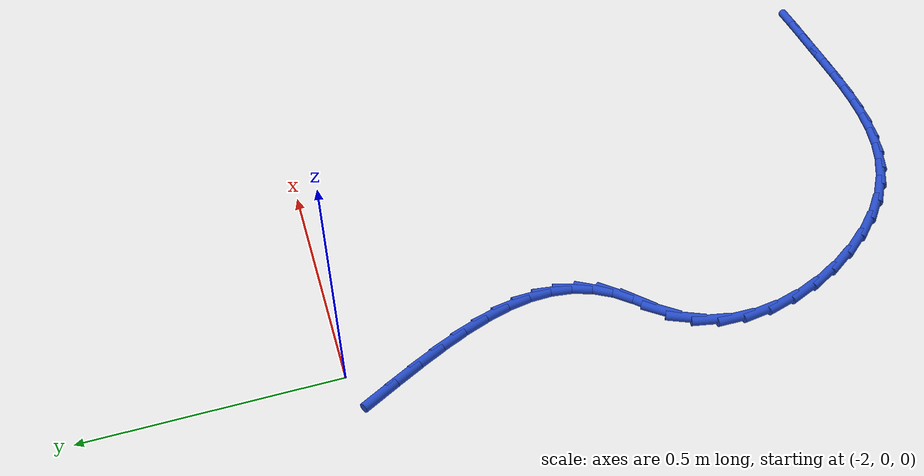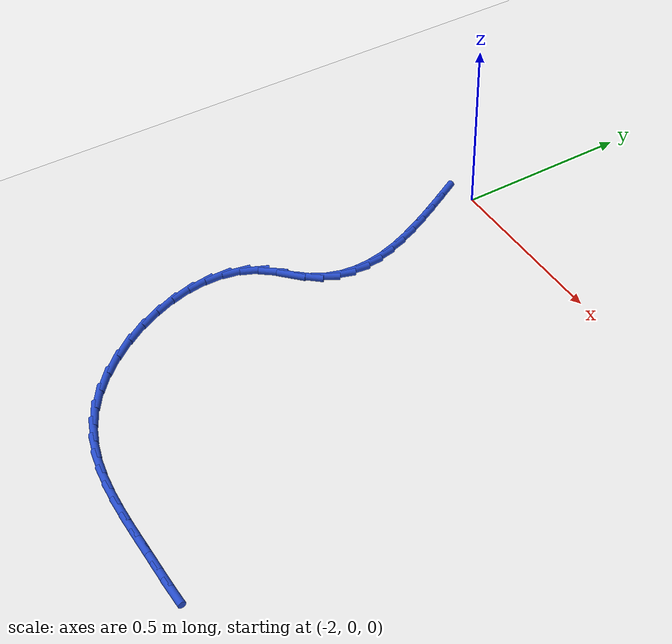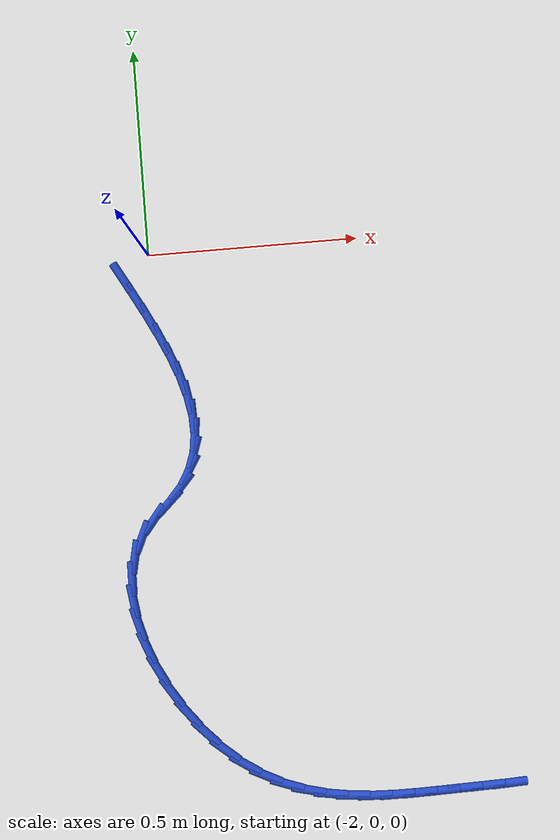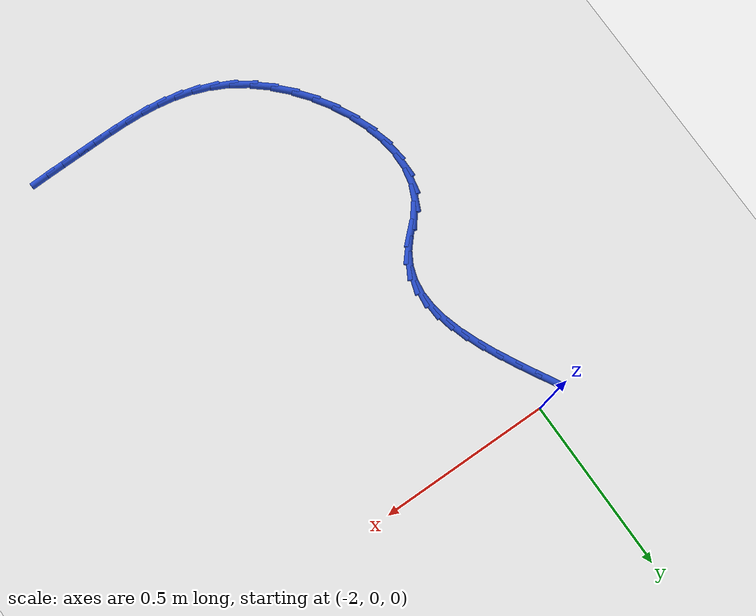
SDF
<sdf version="1.6">
 <world name="default">
  <model name="ground_plane">
   <static>1</static>
   <link name="link">
    <collision name="collision">
     <geometry><plane><normal>0 0 1</normal><size>100 100</size></plane></geometry>
     <surface><friction><ode><mu>100</mu><mu2>50</mu2></ode></friction></surface>
    </collision>
    <visual name="visual">
     <cast_shadows>0</cast_shadows>
     <geometry><plane><normal>0 0 1</normal><size>100 100</size></plane></geometry>
     <material>
      <script><uri>file://media/materials/scripts/gazebo.material</uri><name>Gazebo/WhiteGlow</name></script>
     </material>
    </visual>
   </link>
  </model>
  <model name="line">
   <link name="link_75">
    <pose>-2.064955069815448 -0.05123667066493752 0.01 0 1.57 -1.066757790449165</pose>
    <collision name="collision">
     <geometry><cylinder><radius>0.01</radius><length>0.08</length></cylinder></geometry>
    </collision>
    <visual name="visual">
     <material>
      <script><name>Gazebo/Blue</name><uri>file://media/materials/scripts/gazebo.material</uri></script>
     </material>
     <geometry><cylinder><radius>0.01</radius><length>0.08</length></cylinder></geometry>
    </visual>
   </link>
   <link name="link_76">
    <pose>-2.0361043889884147 -0.10354428683113043 0.01 0 1.57 -1.0812487883206539</pose>
    <collision name="collision">
     <geometry><cylinder><radius>0.01</radius><length>0.08</length></cylinder></geometry>
    </collision>
    <visual name="visual">
     <material>
      <script><name>Gazebo/Blue</name><uri>file://media/materials/scripts/gazebo.material</uri></script>
     </material>
     <geometry><cylinder><radius>0.01</radius><length>0.08</length></cylinder></geometry>
    </visual>
   </link>
   <link name="link_77">
    <pose>-2.0087159751562336 -0.15494828257398235 0.01 0 1.57 -1.1083406317275073</pose>
    <collision name="collision">
     <geometry><cylinder><radius>0.01</radius><length>0.08</length></cylinder></geometry>
    </collision>
    <visual name="visual">
     <material>
      <script><name>Gazebo/Blue</name><uri>file://media/materials/scripts/gazebo.material</uri></script>
     </material>
     <geometry><cylinder><radius>0.01</radius><length>0.08</length></cylinder></geometry>
    </visual>
   </link>
   <link name="link_78">
    <pose>-1.983599296195865 -0.20533168283896389 0.01 0 1.57 -1.1500577351182506</pose>
    <collision name="collision">
     <geometry><cylinder><radius>0.01</radius><length>0.08</length></cylinder></geometry>
    </collision>
    <visual name="visual">
     <material>
      <script><name>Gazebo/Blue</name><uri>file://media/materials/scripts/gazebo.material</uri></script>
     </material>
     <geometry><cylinder><radius>0.01</radius><length>0.08</length></cylinder></geometry>
    </visual>
   </link>
   <link name="link_79">
    <pose>-1.9615638199842682 -0.25457751257154826 0.01 0 1.57 -1.2093233645885941</pose>
    <collision name="collision">
     <geometry><cylinder><radius>0.01</radius><length>0.08</length></cylinder></geometry>
    </collision>
    <visual name="visual">
     <material>
      <script><name>Gazebo/Blue</name><uri>file://media/materials/scripts/gazebo.material</uri></script>
     </material>
     <geometry><cylinder><radius>0.01</radius><length>0.08</length></cylinder></geometry>
    </visual>
   </link>
   <link name="link_80">
    <pose>-1.9434190143984047 -0.30256879671720527 0.01 0 1.57 -1.2900247754436216</pose>
    <collision name="collision">
     <geometry><cylinder><radius>0.01</radius><length>0.08</length></cylinder></geometry>
    </collision>
    <visual name="visual">
     <material>
      <script><name>Gazebo/Blue</name><uri>file://media/materials/scripts/gazebo.material</uri></script>
     </material>
     <geometry><cylinder><radius>0.01</radius><length>0.08</length></cylinder></geometry>
    </visual>
   </link>
   <link name="link_81">
    <pose>-1.929974347315233 -0.3491885602214081 0.01 0 1.57 -1.3967533923671716</pose>
    <collision name="collision">
     <geometry><cylinder><radius>0.01</radius><length>0.08</length></cylinder></geometry>
    </collision>
    <visual name="visual">
     <material>
      <script><name>Gazebo/Blue</name><uri>file://media/materials/scripts/gazebo.material</uri></script>
     </material>
     <geometry><cylinder><radius>0.01</radius><length>0.08</length></cylinder></geometry>
    </visual>
   </link>
   <link name="link_82">
    <pose>-1.9220392866117137 -0.3943198280296273 0.01 0 1.57 -1.5336862756017424</pose>
    <collision name="collision">
     <geometry><cylinder><radius>0.01</radius><length>0.08</length></cylinder></geometry>
    </collision>
    <visual name="visual">
     <material>
      <script><name>Gazebo/Blue</name><uri>file://media/materials/scripts/gazebo.material</uri></script>
     </material>
     <geometry><cylinder><radius>0.01</radius><length>0.08</length></cylinder></geometry>
    </visual>
   </link>
   <link name="link_83">
    <pose>-1.9204233001648072 -0.4378456250873337 0.01 0 1.57 1.439684070483103</pose>
    <collision name="collision">
     <geometry><cylinder><radius>0.01</radius><length>0.08</length></cylinder></geometry>
    </collision>
    <visual name="visual">
     <material>
      <script><name>Gazebo/Blue</name><uri>file://media/materials/scripts/gazebo.material</uri></script>
     </material>
     <geometry><cylinder><radius>0.01</radius><length>0.08</length></cylinder></geometry>
    </visual>
   </link>
   <link name="link_84">
    <pose>-1.9259358558514728 -0.4796489763400002 0.01 0 1.57 1.2461377271641527</pose>
    <collision name="collision">
     <geometry><cylinder><radius>0.01</radius><length>0.08</length></cylinder></geometry>
    </collision>
    <visual name="visual">
     <material>
      <script><name>Gazebo/Blue</name><uri>file://media/materials/scripts/gazebo.material</uri></script>
     </material>
     <geometry><cylinder><radius>0.01</radius><length>0.08</length></cylinder></geometry>
    </visual>
   </link>
   <link name="link_85">
    <pose>-1.9393864215486711 -0.5196129067330971 0.01 0 1.57 1.0421923706652085</pose>
    <collision name="collision">
     <geometry><cylinder><radius>0.01</radius><length>0.08</length></cylinder></geometry>
    </collision>
    <visual name="visual">
     <material>
      <script><name>Gazebo/Blue</name><uri>file://media/materials/scripts/gazebo.material</uri></script>
     </material>
     <geometry><cylinder><radius>0.01</radius><length>0.08</length></cylinder></geometry>
    </visual>
   </link>
   <link name="link_86">
    <pose>-1.961584465133362 -0.5576204412120969 0.01 0 1.57 0.8480452246573172</pose>
    <collision name="collision">
     <geometry><cylinder><radius>0.01</radius><length>0.08</length></cylinder></geometry>
    </collision>
    <visual name="visual">
     <material>
      <script><name>Gazebo/Blue</name><uri>file://media/materials/scripts/gazebo.material</uri></script>
     </material>
     <geometry><cylinder><radius>0.01</radius><length>0.08</length></cylinder></geometry>
    </visual>
   </link>
   <link name="link_87">
    <pose>-1.9932918823509636 -0.593572051450928 0.01 0 1.57 0.7604997464286403</pose>
    <collision name="collision">
     <geometry><cylinder><radius>0.01</radius><length>0.08</length></cylinder></geometry>
    </collision>
    <visual name="visual">
     <material>
      <script><name>Gazebo/Blue</name><uri>file://media/materials/scripts/gazebo.material</uri></script>
     </material>
     <geometry><cylinder><radius>0.01</radius><length>0.08</length></cylinder></geometry>
    </visual>
   </link>
   <link name="link_88">
    <pose>-2.0306106173918126 -0.6290772119949377 0.01 0 1.57 0.9036213092675272</pose>
    <collision name="collision">
     <geometry><cylinder><radius>0.01</radius><length>0.08</length></cylinder></geometry>
    </collision>
    <visual name="visual">
     <material>
      <script><name>Gazebo/Blue</name><uri>file://media/materials/scripts/gazebo.material</uri></script>
     </material>
     <geometry><cylinder><radius>0.01</radius><length>0.08</length></cylinder></geometry>
    </visual>
   </link>
   <link name="link_89">
    <pose>-2.0617413484555156 -0.6685999528192679 0.01 0 1.57 1.148589656674452</pose>
    <collision name="collision">
     <geometry><cylinder><radius>0.01</radius><length>0.08</length></cylinder></geometry>
    </collision>
    <visual name="visual">
     <material>
      <script><name>Gazebo/Blue</name><uri>file://media/materials/scripts/gazebo.material</uri></script>
     </material>
     <geometry><cylinder><radius>0.01</radius><length>0.08</length></cylinder></geometry>
    </visual>
   </link>
   <link name="link_90">
    <pose>-2.081899354668928 -0.7134731127452116 0.01 0 1.57 1.3715873534124607</pose>
    <collision name="collision">
     <geometry><cylinder><radius>0.01</radius><length>0.08</length></cylinder></geometry>
    </collision>
    <visual name="visual">
     <material>
      <script><name>Gazebo/Blue</name><uri>file://media/materials/scripts/gazebo.material</uri></script>
     </material>
     <geometry><cylinder><radius>0.01</radius><length>0.08</length></cylinder></geometry>
    </visual>
   </link>
   <link name="link_91">
    <pose>-2.0918205587353196 -0.7626155633981271 0.01 0 1.57 1.5606089012554023</pose>
    <collision name="collision">
     <geometry><cylinder><radius>0.01</radius><length>0.08</length></cylinder></geometry>
    </collision>
    <visual name="visual">
     <material>
      <script><name>Gazebo/Blue</name><uri>file://media/materials/scripts/gazebo.material</uri></script>
     </material>
     <geometry><cylinder><radius>0.01</radius><length>0.08</length></cylinder></geometry>
    </visual>
   </link>
   <link name="link_92">
    <pose>-2.0923531911019797 -0.8148970685038771 0.01 0 1.57 -1.424354310588359</pose>
    <collision name="collision">
     <geometry><cylinder><radius>0.01</radius><length>0.08</length></cylinder></geometry>
    </collision>
    <visual name="visual">
     <material>
      <script><name>Gazebo/Blue</name><uri>file://media/materials/scripts/gazebo.material</uri></script>
     </material>
     <geometry><cylinder><radius>0.01</radius><length>0.08</length></cylinder></geometry>
    </visual>
   </link>
   <link name="link_93">
    <pose>-2.084345482216199 -0.8691873917883204 0.01 0 1.57 -1.2935481317063808</pose>
    <collision name="collision">
     <geometry><cylinder><radius>0.01</radius><length>0.08</length></cylinder></geometry>
    </collision>
    <visual name="visual">
     <material>
      <script><name>Gazebo/Blue</name><uri>file://media/materials/scripts/gazebo.material</uri></script>
     </material>
     <geometry><cylinder><radius>0.01</radius><length>0.08</length></cylinder></geometry>
    </visual>
   </link>
   <link name="link_94">
    <pose>-2.068645662525268 -0.9243562969773201 0.01 0 1.57 -1.1812684981889106</pose>
    <collision name="collision">
     <geometry><cylinder><radius>0.01</radius><length>0.08</length></cylinder></geometry>
    </collision>
    <visual name="visual">
     <material>
      <script><name>Gazebo/Blue</name><uri>file://media/materials/scripts/gazebo.material</uri></script>
     </material>
     <geometry><cylinder><radius>0.01</radius><length>0.08</length></cylinder></geometry>
    </visual>
   </link>
   <link name="link_95">
    <pose>-2.0461019624764756 -0.9792735477967356 0.01 0 1.57 -1.081025777977505</pose>
    <collision name="collision">
     <geometry><cylinder><radius>0.01</radius><length>0.08</length></cylinder></geometry>
    </collision>
    <visual name="visual">
     <material>
      <script><name>Gazebo/Blue</name><uri>file://media/materials/scripts/gazebo.material</uri></script>
     </material>
     <geometry><cylinder><radius>0.01</radius><length>0.08</length></cylinder></geometry>
    </visual>
   </link>
   <link name="link_96">
    <pose>-2.0175626125171138 -1.0328089079724272 0.01 0 1.57 -0.9872672179914631</pose>
    <collision name="collision">
     <geometry><cylinder><radius>0.01</radius><length>0.08</length></cylinder></geometry>
    </collision>
    <visual name="visual">
     <material>
      <script><name>Gazebo/Blue</name><uri>file://media/materials/scripts/gazebo.material</uri></script>
     </material>
     <geometry><cylinder><radius>0.01</radius><length>0.08</length></cylinder></geometry>
    </visual>
   </link>
   <link name="link_97">
    <pose>-1.9838758430944714 -1.0838321412302576 0.01 0 1.57 -0.8950104734759633</pose>
    <collision name="collision">
     <geometry><cylinder><radius>0.01</radius><length>0.08</length></cylinder></geometry>
    </collision>
    <visual name="visual">
     <material>
      <script><name>Gazebo/Blue</name><uri>file://media/materials/scripts/gazebo.material</uri></script>
     </material>
     <geometry><cylinder><radius>0.01</radius><length>0.08</length></cylinder></geometry>
    </visual>
   </link>
   <link name="link_98">
    <pose>-1.9458898846558401 -1.1312130112960859 0.01 0 1.57 -0.7993344492368631</pose>
    <collision name="collision">
     <geometry><cylinder><radius>0.01</radius><length>0.08</length></cylinder></geometry>
    </collision>
    <visual name="visual">
     <material>
      <script><name>Gazebo/Blue</name><uri>file://media/materials/scripts/gazebo.material</uri></script>
     </material>
     <geometry><cylinder><radius>0.01</radius><length>0.08</length></cylinder></geometry>
    </visual>
   </link>
   <link name="link_99">
    <pose>-1.9044529676485082 -1.1738212818957745 0.01 0 1.57 -0.694815065381239</pose>
    <collision name="collision">
     <geometry><cylinder><radius>0.01</radius><length>0.08</length></cylinder></geometry>
    </collision>
    <visual name="visual">
     <material>
      <script><name>Gazebo/Blue</name><uri>file://media/materials/scripts/gazebo.material</uri></script>
     </material>
     <geometry><cylinder><radius>0.01</radius><length>0.08</length></cylinder></geometry>
    </visual>
   </link>
   <link name="link_100">
    <pose>-1.8604133225197668 -1.2105267167551828 0.01 0 1.57 -0.5766808812802392</pose>
    <collision name="collision">
     <geometry><cylinder><radius>0.01</radius><length>0.08</length></cylinder></geometry>
    </collision>
    <visual name="visual">
     <material>
      <script><name>Gazebo/Blue</name><uri>file://media/materials/scripts/gazebo.material</uri></script>
     </material>
     <geometry><cylinder><radius>0.01</radius><length>0.08</length></cylinder></geometry>
    </visual>
   </link>
   <link name="link_101">
    <pose>-1.8145675146975095 -1.2403464296655773 0.01 0 1.57 -0.4553756536776177</pose>
    <collision name="collision">
     <geometry><cylinder><radius>0.01</radius><length>0.08</length></cylinder></geometry>
    </collision>
    <visual name="visual">
     <material>
      <script><name>Gazebo/Blue</name><uri>file://media/materials/scripts/gazebo.material</uri></script>
     </material>
     <geometry><cylinder><radius>0.01</radius><length>0.08</length></cylinder></geometry>
    </visual>
   </link>
   <link name="link_102">
    <pose>-1.7672912953689857 -1.26349770828062 0.01 0 1.57 -0.3421211007389194</pose>
    <collision name="collision">
     <geometry><cylinder><radius>0.01</radius><length>0.08</length></cylinder></geometry>
    </collision>
    <visual name="visual">
     <material>
      <script><name>Gazebo/Blue</name><uri>file://media/materials/scripts/gazebo.material</uri></script>
     </material>
     <geometry><cylinder><radius>0.01</radius><length>0.08</length></cylinder></geometry>
    </visual>
   </link>
   <link name="link_103">
    <pose>-1.7187553950564685 -1.2807825648654414 0.01 0 1.57 -0.24152047380861763</pose>
    <collision name="collision">
     <geometry><cylinder><radius>0.01</radius><length>0.08</length></cylinder></geometry>
    </collision>
    <visual name="visual">
     <material>
      <script><name>Gazebo/Blue</name><uri>file://media/materials/scripts/gazebo.material</uri></script>
     </material>
     <geometry><cylinder><radius>0.01</radius><length>0.08</length></cylinder></geometry>
    </visual>
   </link>
   <link name="link_104">
    <pose>-1.6691291685419525 -1.2930069353345286 0.01 0 1.57 -0.15638344017191744</pose>
    <collision name="collision">
     <geometry><cylinder><radius>0.01</radius><length>0.08</length></cylinder></geometry>
    </collision>
    <visual name="visual">
     <material>
      <script><name>Gazebo/Blue</name><uri>file://media/materials/scripts/gazebo.material</uri></script>
     </material>
     <geometry><cylinder><radius>0.01</radius><length>0.08</length></cylinder></geometry>
    </visual>
   </link>
   <link name="link_105">
    <pose>-1.6185819706074298 -1.3009767556023681 0.01 0 1.57 -0.08790756239193706</pose>
    <collision name="collision">
     <geometry><cylinder><radius>0.01</radius><length>0.08</length></cylinder></geometry>
    </collision>
    <visual name="visual">
     <material>
      <script><name>Gazebo/Blue</name><uri>file://media/materials/scripts/gazebo.material</uri></script>
     </material>
     <geometry><cylinder><radius>0.01</radius><length>0.08</length></cylinder></geometry>
    </visual>
   </link>
   <link name="link_106">
    <pose>-1.5672831560348952 -1.305497961583447 0.01 0 1.57 -0.036192527974204615</pose>
    <collision name="collision">
     <geometry><cylinder><radius>0.01</radius><length>0.08</length></cylinder></geometry>
    </collision>
    <visual name="visual">
     <material>
      <script><name>Gazebo/Blue</name><uri>file://media/materials/scripts/gazebo.material</uri></script>
     </material>
     <geometry><cylinder><radius>0.01</radius><length>0.08</length></cylinder></geometry>
    </visual>
   </link>
   <link name="link_107">
    <pose>-1.5154020796063408 -1.3073764891922521 0.01 0 1.57 -0.0007990430127082776</pose>
    <collision name="collision">
     <geometry><cylinder><radius>0.01</radius><length>0.08</length></cylinder></geometry>
    </collision>
    <visual name="visual">
     <material>
      <script><name>Gazebo/Blue</name><uri>file://media/materials/scripts/gazebo.material</uri></script>
     </material>
     <geometry><cylinder><radius>0.01</radius><length>0.08</length></cylinder></geometry>
    </visual>
   </link>
   <link name="link_108">
    <pose>-1.4631080961037604 -1.3074182743432694 0.01 0 1.57 0.018822820134526887</pose>
    <collision name="collision">
     <geometry><cylinder><radius>0.01</radius><length>0.08</length></cylinder></geometry>
    </collision>
    <visual name="visual">
     <material>
      <script><name>Gazebo/Blue</name><uri>file://media/materials/scripts/gazebo.material</uri></script>
     </material>
     <geometry><cylinder><radius>0.01</radius><length>0.08</length></cylinder></geometry>
    </visual>
   </link>
   <link name="link_109">
    <pose>-1.410570560309149 -1.3064292529509862 0.01 0 1.57 0.023197652684929078</pose>
    <collision name="collision">
     <geometry><cylinder><radius>0.01</radius><length>0.08</length></cylinder></geometry>
    </collision>
    <visual name="visual">
     <material>
      <script><name>Gazebo/Blue</name><uri>file://media/materials/scripts/gazebo.material</uri></script>
     </material>
     <geometry><cylinder><radius>0.01</radius><length>0.08</length></cylinder></geometry>
    </visual>
   </link>
   <link name="link_110">
    <pose>-1.3579587849566666 -1.305208564287859 0.01 0 1.57 0.02138301377128513</pose>
    <collision name="collision">
     <geometry><cylinder><radius>0.01</radius><length>0.08</length></cylinder></geometry>
    </collision>
    <visual name="visual">
     <material>
      <script><name>Gazebo/Blue</name><uri>file://media/materials/scripts/gazebo.material</uri></script>
     </material>
     <geometry><cylinder><radius>0.01</radius><length>0.08</length></cylinder></geometry>
    </visual>
   </link>
   <link name="link_111">
    <pose>-1.3054391752083416 -1.3040853655561837 0.01 0 1.57 0.027988540750208037</pose>
    <collision name="collision">
     <geometry><cylinder><radius>0.01</radius><length>0.08</length></cylinder></geometry>
    </collision>
    <visual name="visual">
     <material>
      <script><name>Gazebo/Blue</name><uri>file://media/materials/scripts/gazebo.material</uri></script>
     </material>
     <geometry><cylinder><radius>0.01</radius><length>0.08</length></cylinder></geometry>
    </visual>
   </link>
   <link name="link_112">
    <pose>-1.2531733931550186 -1.302622140488832 0.01 0 1.57 0.04454836180287558</pose>
    <collision name="collision">
     <geometry><cylinder><radius>0.01</radius><length>0.08</length></cylinder></geometry>
    </collision>
    <visual name="visual">
     <material>
      <script><name>Gazebo/Blue</name><uri>file://media/materials/scripts/gazebo.material</uri></script>
     </material>
     <geometry><cylinder><radius>0.01</radius><length>0.08</length></cylinder></geometry>
    </visual>
   </link>
  </model>
 </world>
</sdf>
